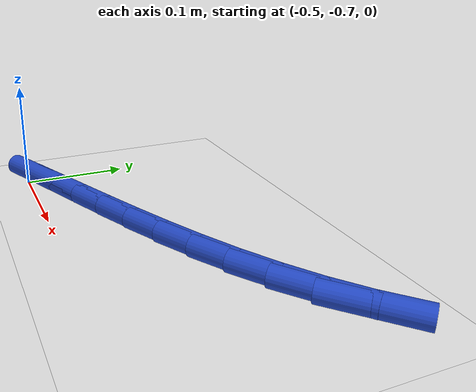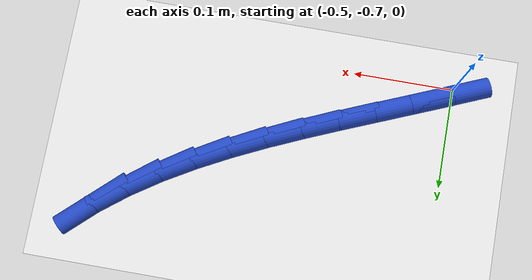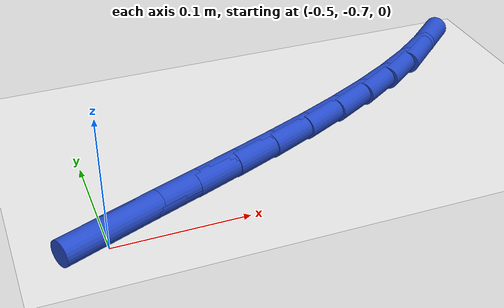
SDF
<sdf version="1.6">
 <world name="default">
  <model name="ground_plane">
   <static>1</static>
   <link name="link">
    <collision name="collision">
     <geometry><plane><normal>0 0 1</normal><size>100 100</size></plane></geometry>
     <surface><friction><ode><mu>100</mu><mu2>50</mu2></ode></friction></surface>
    </collision>
    <visual name="visual">
     <cast_shadows>0</cast_shadows>
     <geometry><plane><normal>0 0 1</normal><size>100 100</size></plane></geometry>
     <material>
      <script><uri>file://media/materials/scripts/gazebo.material</uri><name>Gazebo/WhiteGlow</name></script>
     </material>
    </visual>
   </link>
  </model>
  <model name="line">
   <link name="link_234">
    <pose>-0.4962074130626819 -0.6907081703298434 0.01 0 1.57 0.3991908792628699</pose>
    <collision name="collision">
     <geometry><cylinder><radius>0.01</radius><length>0.08</length></cylinder></geometry>
    </collision>
    <visual name="visual">
     <material>
      <script><name>Gazebo/Blue</name><uri>file://media/materials/scripts/gazebo.material</uri></script>
     </material>
     <geometry><cylinder><radius>0.01</radius><length>0.08</length></cylinder></geometry>
    </visual>
   </link>
   <link name="link_235">
    <pose>-0.4621189884169937 -0.6763283164257113 0.01 0 1.57 0.3940002818799265</pose>
    <collision name="collision">
     <geometry><cylinder><radius>0.01</radius><length>0.08</length></cylinder></geometry>
    </collision>
    <visual name="visual">
     <material>
      <script><name>Gazebo/Blue</name><uri>file://media/materials/scripts/gazebo.material</uri></script>
     </material>
     <geometry><cylinder><radius>0.01</radius><length>0.08</length></cylinder></geometry>
    </visual>
   </link>
   <link name="link_236">
    <pose>-0.4276833460531439 -0.6620120825470951 0.01 0 1.57 0.3942336895467431</pose>
    <collision name="collision">
     <geometry><cylinder><radius>0.01</radius><length>0.08</length></cylinder></geometry>
    </collision>
    <visual name="visual">
     <material>
      <script><name>Gazebo/Blue</name><uri>file://media/materials/scripts/gazebo.material</uri></script>
     </material>
     <geometry><cylinder><radius>0.01</radius><length>0.08</length></cylinder></geometry>
    </visual>
   </link>
   <link name="link_237">
    <pose>-0.39307510026431897 -0.647614615809711 0.01 0 1.57 0.4031352848203707</pose>
    <collision name="collision">
     <geometry><cylinder><radius>0.01</radius><length>0.08</length></cylinder></geometry>
    </collision>
    <visual name="visual">
     <material>
      <script><name>Gazebo/Blue</name><uri>file://media/materials/scripts/gazebo.material</uri></script>
     </material>
     <geometry><cylinder><radius>0.01</radius><length>0.08</length></cylinder></geometry>
    </visual>
   </link>
   <link name="link_238">
    <pose>-0.3585927692935109 -0.6329081131579471 0.01 0 1.57 0.42092614533798667</pose>
    <collision name="collision">
     <geometry><cylinder><radius>0.01</radius><length>0.08</length></cylinder></geometry>
    </collision>
    <visual name="visual">
     <material>
      <script><name>Gazebo/Blue</name><uri>file://media/materials/scripts/gazebo.material</uri></script>
     </material>
     <geometry><cylinder><radius>0.01</radius><length>0.08</length></cylinder></geometry>
    </visual>
   </link>
   <link name="link_239">
    <pose>-0.32453829905093945 -0.617662476810446 0.01 0 1.57 0.44798397071897006</pose>
    <collision name="collision">
     <geometry><cylinder><radius>0.01</radius><length>0.08</length></cylinder></geometry>
    </collision>
    <visual name="visual">
     <material>
      <script><name>Gazebo/Blue</name><uri>file://media/materials/scripts/gazebo.material</uri></script>
     </material>
     <geometry><cylinder><radius>0.01</radius><length>0.08</length></cylinder></geometry>
    </visual>
   </link>
   <link name="link_240">
    <pose>-0.2912136354468244 -0.6016476089858495 0.01 0 1.57 0.48491257346410926</pose>
    <collision name="collision">
     <geometry><cylinder><radius>0.01</radius><length>0.08</length></cylinder></geometry>
    </collision>
    <visual name="visual">
     <material>
      <script><name>Gazebo/Blue</name><uri>file://media/materials/scripts/gazebo.material</uri></script>
     </material>
     <geometry><cylinder><radius>0.01</radius><length>0.08</length></cylinder></geometry>
    </visual>
   </link>
   <link name="link_241">
    <pose>-0.2589207243913854 -0.5846334119027998 0.01 0 1.57 0.5324993611597449</pose>
    <collision name="collision">
     <geometry><cylinder><radius>0.01</radius><length>0.08</length></cylinder></geometry>
    </collision>
    <visual name="visual">
     <material>
      <script><name>Gazebo/Blue</name><uri>file://media/materials/scripts/gazebo.material</uri></script>
     </material>
     <geometry><cylinder><radius>0.01</radius><length>0.08</length></cylinder></geometry>
    </visual>
   </link>
   <link name="link_242">
    <pose>-0.2279615117948421 -0.5663897877799392 0.01 0 1.57 0.5916320526467961</pose>
    <collision name="collision">
     <geometry><cylinder><radius>0.01</radius><length>0.08</length></cylinder></geometry>
    </collision>
    <visual name="visual">
     <material>
      <script><name>Gazebo/Blue</name><uri>file://media/materials/scripts/gazebo.material</uri></script>
     </material>
     <geometry><cylinder><radius>0.01</radius><length>0.08</length></cylinder></geometry>
    </visual>
   </link>
   <link name="link_243">
    <pose>-0.1986379435674144 -0.5466866388359098 0.01 0 1.57 0.6631457641800654</pose>
    <collision name="collision">
     <geometry><cylinder><radius>0.01</radius><length>0.08</length></cylinder></geometry>
    </collision>
    <visual name="visual">
     <material>
      <script><name>Gazebo/Blue</name><uri>file://media/materials/scripts/gazebo.material</uri></script>
     </material>
     <geometry><cylinder><radius>0.01</radius><length>0.08</length></cylinder></geometry>
    </visual>
   </link>
   <link name="link_244">
    <pose>-0.17125196561932185 -0.525293867289354 0.01 0 1.57 0.7475707729629116</pose>
    <collision name="collision">
     <geometry><cylinder><radius>0.01</radius><length>0.08</length></cylinder></geometry>
    </collision>
    <visual name="visual">
     <material>
      <script><name>Gazebo/Blue</name><uri>file://media/materials/scripts/gazebo.material</uri></script>
     </material>
     <geometry><cylinder><radius>0.01</radius><length>0.08</length></cylinder></geometry>
    </visual>
   </link>
  </model>
 </world>
</sdf>
